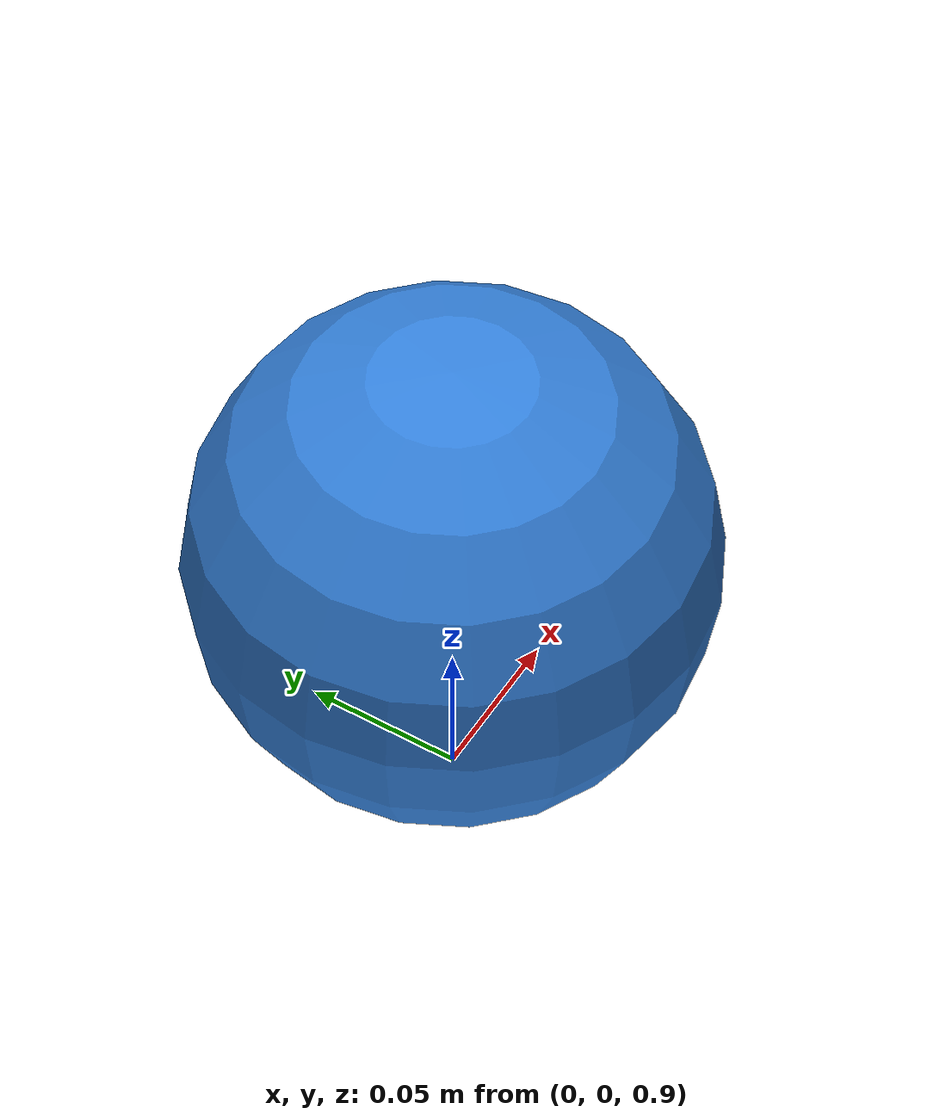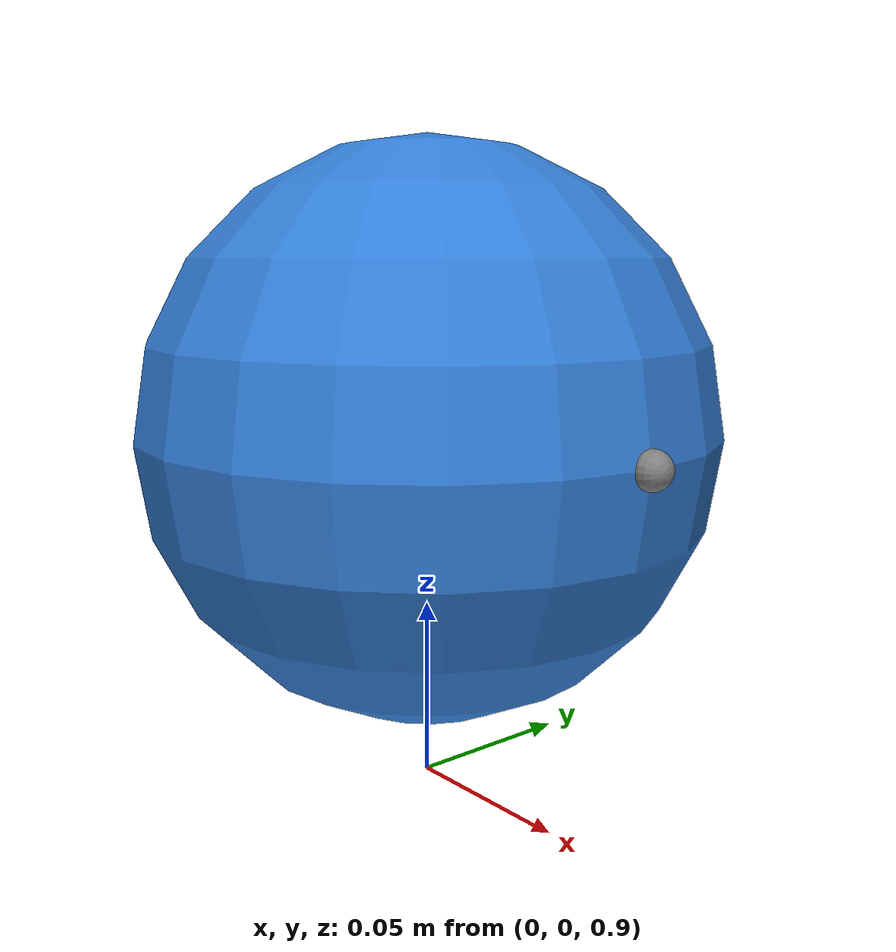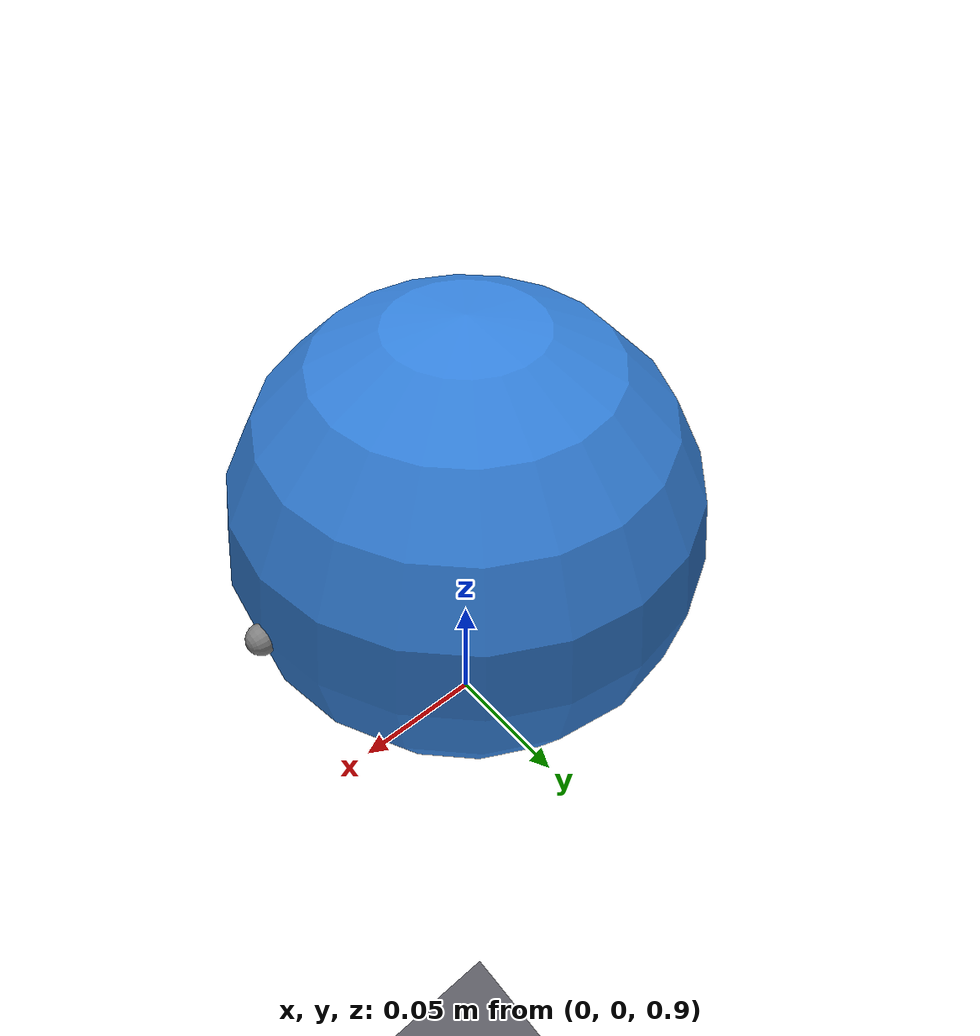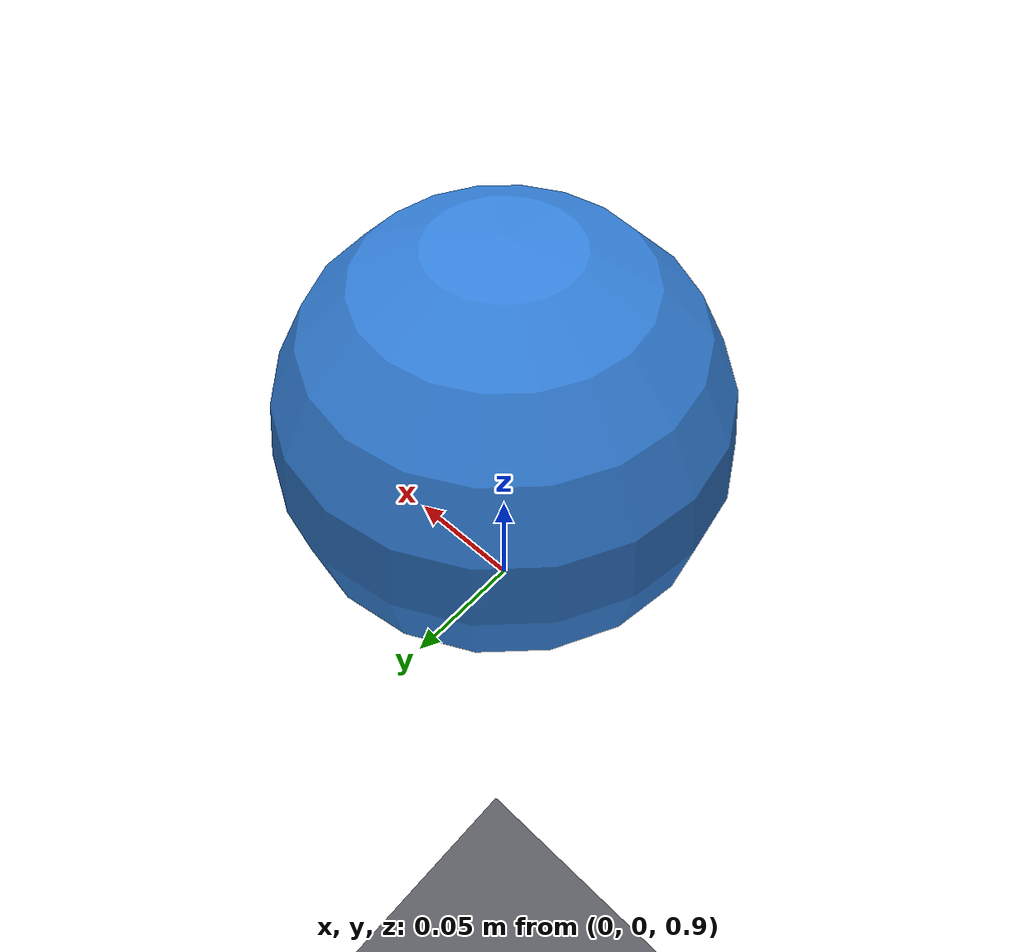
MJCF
<mujoco model="rangefinder">
    <compiler angle="radian"/>
    <option gravity="0 0 0" timestep="0.001"/>

    <default>
        <geom contype="0" conaffinity="0"/>
    </default>

    <worldbody>
        <geom name="ground" type="box" size="2 2 0.005" pos="0 0 -0.005"
              rgba="0.35 0.35 0.38 1"/>
        <body name="sensor_body" pos="0 0 1.0">
            <joint name="slide" type="slide" axis="0 0 1"/>
            <geom name="body_sphere" type="sphere" size="0.08" mass="0.5"
                  rgba="0.2 0.5 0.85 1"/>
            <site name="eye_down" pos="0 0 -0.08" euler="3.14159265 0 0"/>
            <site name="eye_side" pos="0.08 0 0" euler="0 -1.5707963 0"/>
        </body>
    </worldbody>

    <actuator>
        <position name="servo" joint="slide" kp="500"/>
    </actuator>

    <sensor>
        <rangefinder name="down" site="eye_down"/>
        <rangefinder name="side" site="eye_side"/>
        <jointpos name="height_offset" joint="slide"/>
    </sensor>
</mujoco>
